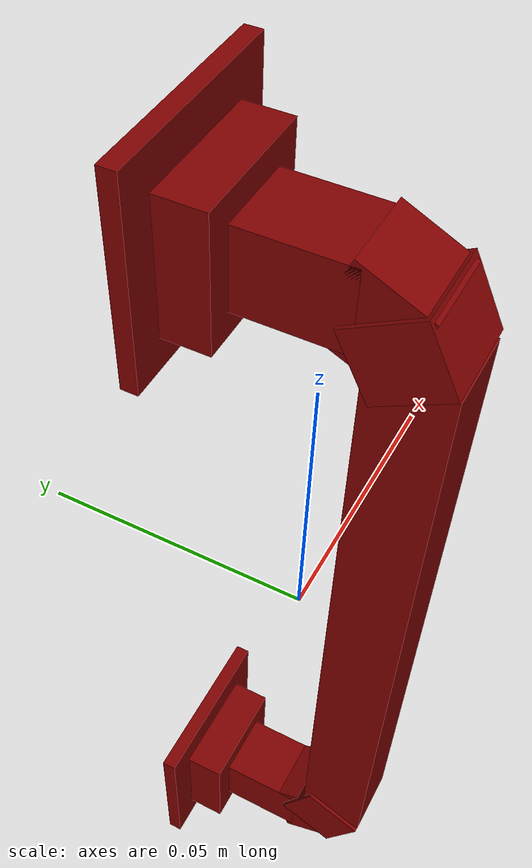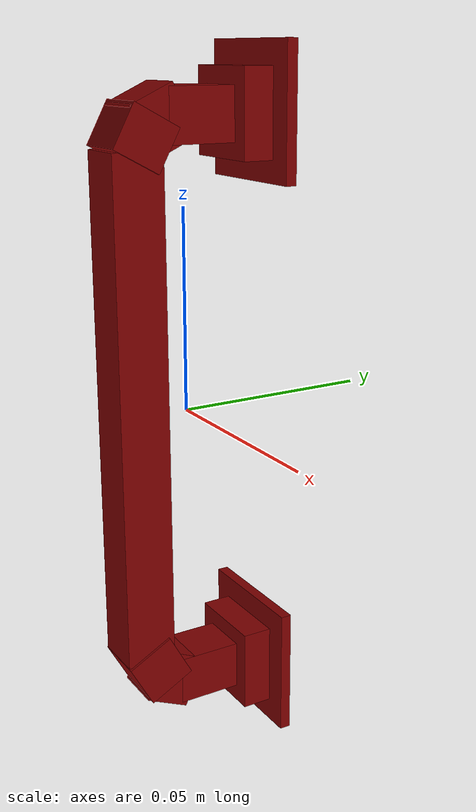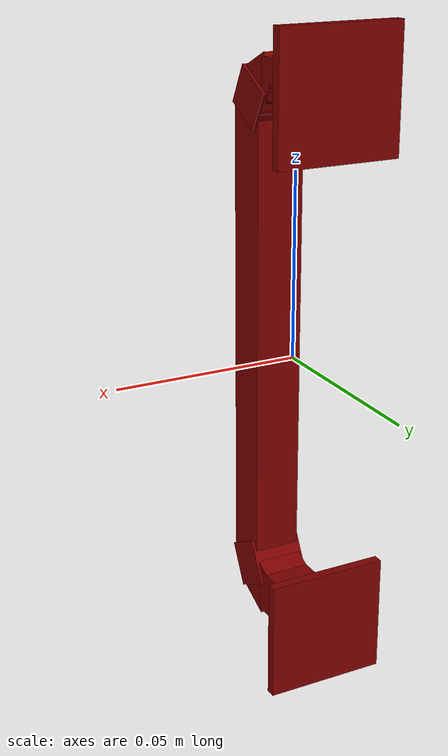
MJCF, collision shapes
<?xml version='1.0' encoding='UTF-8'?>
<mujoco model="model">
  <option timestep="0.002" gravity="0.0 0.0 -9.81"/>
  <compiler angle="radian"/>
  <asset>
    <mesh file="visuals/CabinetHandle011.obj" name="CabinetHandle011_vis"/>
    <texture file="visuals/T_BC001.png" name="tex" type="2d"/>
    <material name="mat" rgba="1 1 1 1.0" texture="tex" shininess="-1023.0" specular="0.3103448502657381"/>
  </asset>
  <default>
    <default class="visual">
      <geom conaffinity="0" contype="0" group="1" type="mesh"/>
    </default>
    <default class="collision">
      <geom group="0" rgba="0.5 0 0 0.5" density="1.0" solref="0.004 1" solimp="0.998 0.998 0.001"/>
    </default>
    <default class="spawn">
      <geom group="0" rgba="1 1 1 0.5" contype="0" conaffinity="0"/>
      <site group="0" rgba="1 1 1 0.5"/>
    </default>
    <default class="region">
      <geom group="1" conaffinity="0" contype="0" rgba="0 1 0 0" mass="0"/>
    </default>
  </default>
  <worldbody>
    <body>
      <body name="object">
        <geom mesh="CabinetHandle011_vis" type="mesh" solimp="0.998 0.998 0.001" solref="0.001 1" friction="0.95 0.3 0.1" class="visual" material="mat"/>
        <geom type="box" pos="-4.666042877943255e-05 -0.01436079666018486 0.00023044488625600934" size="0.006478141061961651 0.006379198748618364 0.06341902911663055" quat="1.0 0.0 0.0 0.0" class="collision"/>
        <geom type="box" pos="-4.666042877943255e-05 0.0019300084095448256 0.07118537276983261" size="0.006478141061961651 0.008380507118999958 0.006424708757549524" quat="1.0 0.0 0.0 0.0" class="collision"/>
        <geom type="box" pos="-4.666042877943255e-05 -0.008022995665669441 0.06999620795249939" size="0.006478141061961651 0.005949551705271006 0.006736468989402056" quat="0.9766363501548767 0.21489863097667694 -4.7717081614146326e-17 9.146933901117864e-25" class="collision"/>
        <geom type="box" pos="-4.666042877943255e-05 -0.012414301745593548 0.06654426455497742" size="0.00721912132576108 0.005729848053306341 0.006319430191069841" quat="0.8579085469245911 0.5138024091720581 -1.1408705295413892e-16 8.571137029433674e-24" class="collision"/>
        <geom type="box" pos="-4.914909368380904e-09 0.019351687282323837 0.07150883227586746" size="0.016534289345145226 0.0013883063802495599 0.01628916896879673" quat="1.0 0.0 0.0 0.0" class="collision"/>
        <geom type="box" pos="-5.071394480182789e-05 0.014109875075519085 0.07127523422241211" size="0.010804843157529831 0.003799363039433956 0.010551681742072105" quat="1.0 0.0 0.0 0.0" class="collision"/>
        <geom type="box" pos="9.49512468650937e-10 0.01935168169438839 -0.0713159441947937" size="0.016534296795725822 0.0013882998609915376 0.016482071951031685" quat="1.0 0.0 0.0 0.0" class="collision"/>
        <geom type="box" pos="-5.071394480182789e-05 0.014109875075519085 -0.07130502164363861" size="0.010804838500916958 0.003799361875280738 0.010551678016781807" quat="1.0 0.0 0.0 0.0" class="collision"/>
        <geom type="box" pos="-4.697759504779242e-05 0.002341280225664377 -0.0712515190243721" size="0.006478743627667427 0.008273156359791756 0.006219665519893169" quat="1.0 0.0 0.0 0.0" class="collision"/>
        <geom type="box" pos="-4.667398752644658e-05 -0.007556292228400707 -0.07003331929445267" size="0.006478141061961651 0.005949551705271006 0.006794837303459644" quat="1.6557372873649e-05 2.4646284146001562e-05 -0.9771878719329834 0.2123766839504242" class="collision"/>
        <geom type="box" pos="-4.63626129203476e-05 -0.012128597125411034 -0.06599344313144684" size="0.00721912132576108 0.006233268417418003 0.006319430191069841" quat="7.877446478232741e-06 2.8627464416786097e-05 -0.8592321872711182 0.5115858316421509" class="collision"/>
        <geom class="region" name="reg_main" type="box" pos="4.656612873077393e-10 0.0 0.0" size="0.017534296795725823 0.021739994943141938 0.08879802173376083"/>
      </body>
    </body>
  </worldbody>
  <actuator/>
</mujoco>
